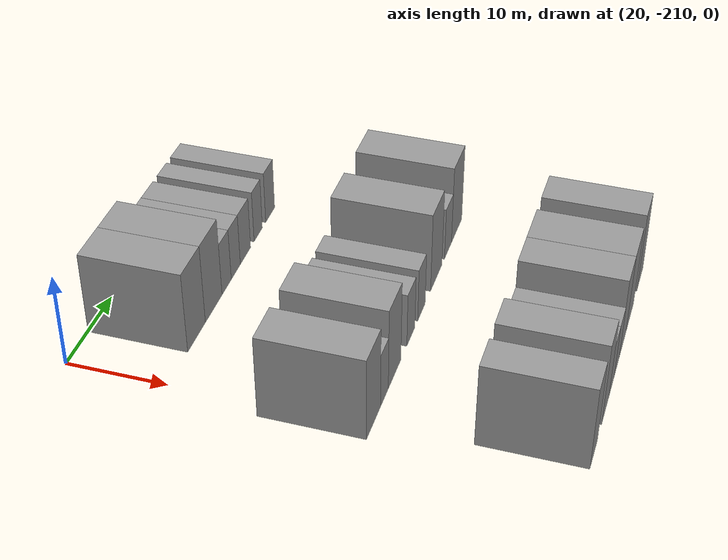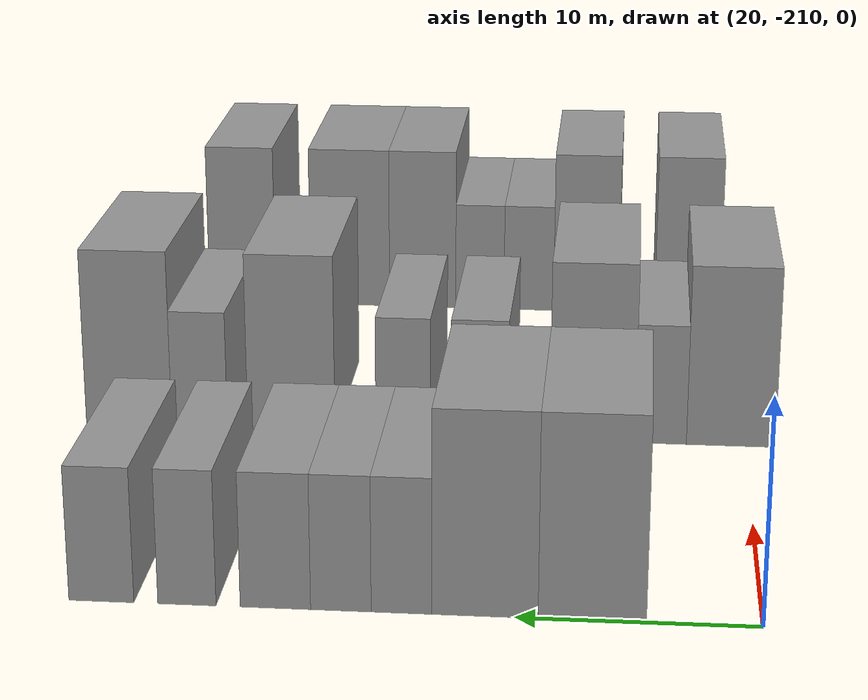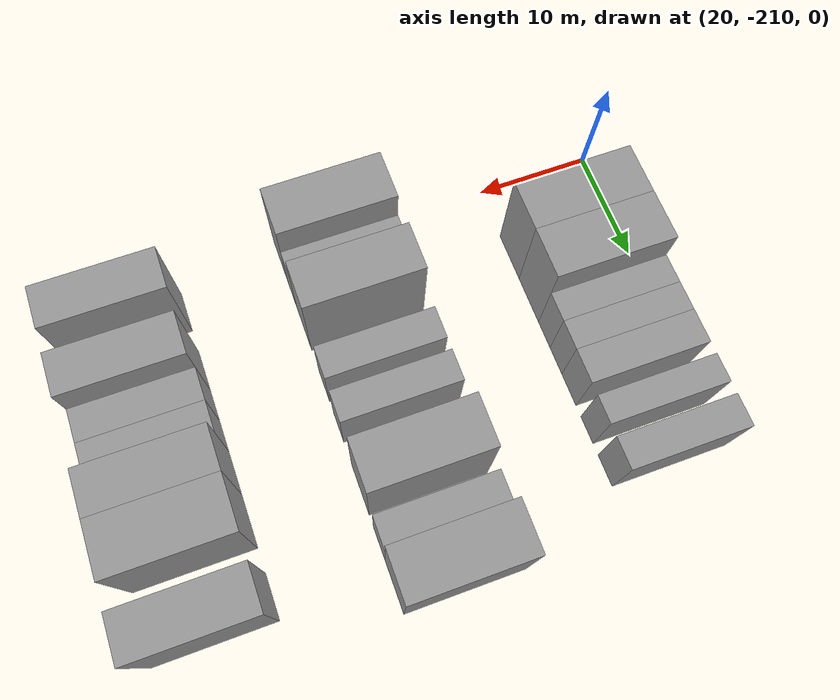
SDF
<sdf version="1.6">
 <world name="default">
  <model name="building_8">
   <static>1</static>
   <pose>25.0000 -203.1391 0 0.000000 0.000000 0.000000</pose>
   <link name="link">
    <pose>0 0 4.50 0 0 0</pose>
    <collision name="collision"><geometry><box><size>10.0000 4.3790 9.0000</size></box></geometry></collision>
    <visual name="visual">
     <cast_shadows>0</cast_shadows>
     <geometry><box><size>10.0000 4.3790 9.0000</size></box></geometry>
     <material>
      <script>
       <uri>model://grey_wall/materials/scripts</uri>
       <uri>model://grey_wall/materials/textures</uri>
       <name>vrc/grey_wall</name>
      </script>
     </material>
    </visual>
   </link>
  </model>
  <model name="building_9">
   <static>1</static>
   <pose>25.0000 -198.7892 0 0.000000 0.000000 0.000000</pose>
   <link name="link">
    <pose>0 0 4.50 0 0 0</pose>
    <collision name="collision"><geometry><box><size>10.0000 4.3207 9.0000</size></box></geometry></collision>
    <visual name="visual">
     <cast_shadows>0</cast_shadows>
     <geometry><box><size>10.0000 4.3207 9.0000</size></box></geometry>
     <material>
      <script>
       <uri>model://grey_wall/materials/scripts</uri>
       <uri>model://grey_wall/materials/textures</uri>
       <name>vrc/grey_wall</name>
      </script>
     </material>
    </visual>
   </link>
  </model>
  <model name="building_10">
   <static>1</static>
   <pose>25.0000 -195.3868 0 0.000000 0.000000 0.000000</pose>
   <link name="link">
    <pose>0 0 3.00 0 0 0</pose>
    <collision name="collision"><geometry><box><size>10.0000 2.4841 6.0000</size></box></geometry></collision>
    <visual name="visual">
     <cast_shadows>0</cast_shadows>
     <geometry><box><size>10.0000 2.4841 6.0000</size></box></geometry>
     <material>
      <script>
       <uri>model://grey_wall/materials/scripts</uri>
       <uri>model://grey_wall/materials/textures</uri>
       <name>vrc/grey_wall</name>
      </script>
     </material>
    </visual>
   </link>
  </model>
  <model name="building_11">
   <static>1</static>
   <pose>25.0000 -192.8999 0 0.000000 0.000000 0.000000</pose>
   <link name="link">
    <pose>0 0 3.00 0 0 0</pose>
    <collision name="collision"><geometry><box><size>10.0000 2.4897 6.0000</size></box></geometry></collision>
    <visual name="visual">
     <cast_shadows>0</cast_shadows>
     <geometry><box><size>10.0000 2.4897 6.0000</size></box></geometry>
     <material>
      <script>
       <uri>model://grey_wall/materials/scripts</uri>
       <uri>model://grey_wall/materials/textures</uri>
       <name>vrc/grey_wall</name>
      </script>
     </material>
    </visual>
   </link>
  </model>
  <model name="building_12">
   <static>1</static>
   <pose>25.0000 -190.2014 0 0.000000 0.000000 0.000000</pose>
   <link name="link">
    <pose>0 0 3.00 0 0 0</pose>
    <collision name="collision"><geometry><box><size>10.0000 2.9074 6.0000</size></box></geometry></collision>
    <visual name="visual">
     <cast_shadows>0</cast_shadows>
     <geometry><box><size>10.0000 2.9074 6.0000</size></box></geometry>
     <material>
      <script>
       <uri>model://grey_wall/materials/scripts</uri>
       <uri>model://grey_wall/materials/textures</uri>
       <name>vrc/grey_wall</name>
      </script>
     </material>
    </visual>
   </link>
  </model>
  <model name="building_13">
   <static>1</static>
   <pose>25.0000 -186.5393 0 0.000000 0.000000 0.000000</pose>
   <link name="link">
    <pose>0 0 3.00 0 0 0</pose>
    <collision name="collision"><geometry><box><size>10.0000 2.4167 6.0000</size></box></geometry></collision>
    <visual name="visual">
     <cast_shadows>0</cast_shadows>
     <geometry><box><size>10.0000 2.4167 6.0000</size></box></geometry>
     <material>
      <script>
       <uri>model://grey_wall/materials/scripts</uri>
       <uri>model://grey_wall/materials/textures</uri>
       <name>vrc/grey_wall</name>
      </script>
     </material>
    </visual>
   </link>
  </model>
  <model name="building_14">
   <static>1</static>
   <pose>25.0000 -182.9748 0 0.000000 0.000000 0.000000</pose>
   <link name="link">
    <pose>0 0 3.00 0 0 0</pose>
    <collision name="collision"><geometry><box><size>10.0000 2.7123 6.0000</size></box></geometry></collision>
    <visual name="visual">
     <cast_shadows>0</cast_shadows>
     <geometry><box><size>10.0000 2.7123 6.0000</size></box></geometry>
     <material>
      <script>
       <uri>model://grey_wall/materials/scripts</uri>
       <uri>model://grey_wall/materials/textures</uri>
       <name>vrc/grey_wall</name>
      </script>
     </material>
    </visual>
   </link>
  </model>
  <model name="building_124">
   <static>1</static>
   <pose>44.0000 -209.3266 0 0.000000 0.000000 0.000000</pose>
   <link name="link">
    <pose>0 0 4.50 0 0 0</pose>
    <collision name="collision"><geometry><box><size>10.0000 4.2366 9.0000</size></box></geometry></collision>
    <visual name="visual">
     <cast_shadows>0</cast_shadows>
     <geometry><box><size>10.0000 4.2366 9.0000</size></box></geometry>
     <material>
      <script>
       <uri>model://grey_wall/materials/scripts</uri>
       <uri>model://grey_wall/materials/textures</uri>
       <name>vrc/grey_wall</name>
      </script>
     </material>
    </visual>
   </link>
  </model>
  <model name="building_125">
   <static>1</static>
   <pose>44.0000 -205.9829 0 0.000000 0.000000 0.000000</pose>
   <link name="link">
    <pose>0 0 3.00 0 0 0</pose>
    <collision name="collision"><geometry><box><size>10.0000 2.4507 6.0000</size></box></geometry></collision>
    <visual name="visual">
     <cast_shadows>0</cast_shadows>
     <geometry><box><size>10.0000 2.4507 6.0000</size></box></geometry>
     <material>
      <script>
       <uri>model://grey_wall/materials/scripts</uri>
       <uri>model://grey_wall/materials/textures</uri>
       <name>vrc/grey_wall</name>
      </script>
     </material>
    </visual>
   </link>
  </model>
  <model name="building_126">
   <static>1</static>
   <pose>44.0000 -202.7078 0 0.000000 0.000000 0.000000</pose>
   <link name="link">
    <pose>0 0 4.50 0 0 0</pose>
    <collision name="collision"><geometry><box><size>10.0000 4.0996 9.0000</size></box></geometry></collision>
    <visual name="visual">
     <cast_shadows>0</cast_shadows>
     <geometry><box><size>10.0000 4.0996 9.0000</size></box></geometry>
     <material>
      <script>
       <uri>model://grey_wall/materials/scripts</uri>
       <uri>model://grey_wall/materials/textures</uri>
       <name>vrc/grey_wall</name>
      </script>
     </material>
    </visual>
   </link>
  </model>
  <model name="building_127">
   <static>1</static>
   <pose>44.0000 -197.2748 0 0.000000 0.000000 0.000000</pose>
   <link name="link">
    <pose>0 0 3.00 0 0 0</pose>
    <collision name="collision"><geometry><box><size>10.0000 2.7664 6.0000</size></box></geometry></collision>
    <visual name="visual">
     <cast_shadows>0</cast_shadows>
     <geometry><box><size>10.0000 2.7664 6.0000</size></box></geometry>
     <material>
      <script>
       <uri>model://grey_wall/materials/scripts</uri>
       <uri>model://grey_wall/materials/textures</uri>
       <name>vrc/grey_wall</name>
      </script>
     </material>
    </visual>
   </link>
  </model>
  <model name="building_128">
   <static>1</static>
   <pose>44.0000 -193.5607 0 0.000000 0.000000 0.000000</pose>
   <link name="link">
    <pose>0 0 3.00 0 0 0</pose>
    <collision name="collision"><geometry><box><size>10.0000 2.6619 6.0000</size></box></geometry></collision>
    <visual name="visual">
     <cast_shadows>0</cast_shadows>
     <geometry><box><size>10.0000 2.6619 6.0000</size></box></geometry>
     <material>
      <script>
       <uri>model://grey_wall/materials/scripts</uri>
       <uri>model://grey_wall/materials/textures</uri>
       <name>vrc/grey_wall</name>
      </script>
     </material>
    </visual>
   </link>
  </model>
  <model name="building_129">
   <static>1</static>
   <pose>44.0000 -188.0911 0 0.000000 0.000000 0.000000</pose>
   <link name="link">
    <pose>0 0 4.50 0 0 0</pose>
    <collision name="collision"><geometry><box><size>10.0000 4.2774 9.0000</size></box></geometry></collision>
    <visual name="visual">
     <cast_shadows>0</cast_shadows>
     <geometry><box><size>10.0000 4.2774 9.0000</size></box></geometry>
     <material>
      <script>
       <uri>model://grey_wall/materials/scripts</uri>
       <uri>model://grey_wall/materials/textures</uri>
       <name>vrc/grey_wall</name>
      </script>
     </material>
    </visual>
   </link>
  </model>
  <model name="building_130">
   <static>1</static>
   <pose>44.0000 -183.5772 0 0.000000 0.000000 0.000000</pose>
   <link name="link">
    <pose>0 0 3.00 0 0 0</pose>
    <collision name="collision"><geometry><box><size>10.0000 2.7503 6.0000</size></box></geometry></collision>
    <visual name="visual">
     <cast_shadows>0</cast_shadows>
     <geometry><box><size>10.0000 2.7503 6.0000</size></box></geometry>
     <material>
      <script>
       <uri>model://grey_wall/materials/scripts</uri>
       <uri>model://grey_wall/materials/textures</uri>
       <name>vrc/grey_wall</name>
      </script>
     </material>
    </visual>
   </link>
  </model>
  <model name="building_131">
   <static>1</static>
   <pose>44.0000 -180.0854 0 0.000000 0.000000 0.000000</pose>
   <link name="link">
    <pose>0 0 4.50 0 0 0</pose>
    <collision name="collision"><geometry><box><size>10.0000 4.2333 9.0000</size></box></geometry></collision>
    <visual name="visual">
     <cast_shadows>0</cast_shadows>
     <geometry><box><size>10.0000 4.2333 9.0000</size></box></geometry>
     <material>
      <script>
       <uri>model://grey_wall/materials/scripts</uri>
       <uri>model://grey_wall/materials/textures</uri>
       <name>vrc/grey_wall</name>
      </script>
     </material>
    </visual>
   </link>
  </model>
  <model name="building_244">
   <static>1</static>
   <pose>63.0000 -207.5299 0 0.000000 0.000000 0.000000</pose>
   <link name="link">
    <pose>0 0 4.50 0 0 0</pose>
    <collision name="collision"><geometry><box><size>10.0000 3.6032 9.0000</size></box></geometry></collision>
    <visual name="visual">
     <cast_shadows>0</cast_shadows>
     <geometry><box><size>10.0000 3.6032 9.0000</size></box></geometry>
     <material>
      <script>
       <uri>model://grey_wall/materials/scripts</uri>
       <uri>model://grey_wall/materials/textures</uri>
       <name>vrc/grey_wall</name>
      </script>
     </material>
    </visual>
   </link>
  </model>
  <model name="building_245">
   <static>1</static>
   <pose>63.0000 -201.9172 0 0.000000 0.000000 0.000000</pose>
   <link name="link">
    <pose>0 0 4.50 0 0 0</pose>
    <collision name="collision"><geometry><box><size>10.0000 3.6222 9.0000</size></box></geometry></collision>
    <visual name="visual">
     <cast_shadows>0</cast_shadows>
     <geometry><box><size>10.0000 3.6222 9.0000</size></box></geometry>
     <material>
      <script>
       <uri>model://grey_wall/materials/scripts</uri>
       <uri>model://grey_wall/materials/textures</uri>
       <name>vrc/grey_wall</name>
      </script>
     </material>
    </visual>
   </link>
  </model>
  <model name="building_246">
   <static>1</static>
   <pose>63.0000 -198.7202 0 0.000000 0.000000 0.000000</pose>
   <link name="link">
    <pose>0 0 3.00 0 0 0</pose>
    <collision name="collision"><geometry><box><size>10.0000 2.7716 6.0000</size></box></geometry></collision>
    <visual name="visual">
     <cast_shadows>0</cast_shadows>
     <geometry><box><size>10.0000 2.7716 6.0000</size></box></geometry>
     <material>
      <script>
       <uri>model://grey_wall/materials/scripts</uri>
       <uri>model://grey_wall/materials/textures</uri>
       <name>vrc/grey_wall</name>
      </script>
     </material>
    </visual>
   </link>
  </model>
  <model name="building_247">
   <static>1</static>
   <pose>63.0000 -195.9802 0 0.000000 0.000000 0.000000</pose>
   <link name="link">
    <pose>0 0 3.00 0 0 0</pose>
    <collision name="collision"><geometry><box><size>10.0000 2.7084 6.0000</size></box></geometry></collision>
    <visual name="visual">
     <cast_shadows>0</cast_shadows>
     <geometry><box><size>10.0000 2.7084 6.0000</size></box></geometry>
     <material>
      <script>
       <uri>model://grey_wall/materials/scripts</uri>
       <uri>model://grey_wall/materials/textures</uri>
       <name>vrc/grey_wall</name>
      </script>
     </material>
    </visual>
   </link>
  </model>
  <model name="building_248">
   <static>1</static>
   <pose>63.0000 -192.7599 0 0.000000 0.000000 0.000000</pose>
   <link name="link">
    <pose>0 0 4.50 0 0 0</pose>
    <collision name="collision"><geometry><box><size>10.0000 3.7323 9.0000</size></box></geometry></collision>
    <visual name="visual">
     <cast_shadows>0</cast_shadows>
     <geometry><box><size>10.0000 3.7323 9.0000</size></box></geometry>
     <material>
      <script>
       <uri>model://grey_wall/materials/scripts</uri>
       <uri>model://grey_wall/materials/textures</uri>
       <name>vrc/grey_wall</name>
      </script>
     </material>
    </visual>
   </link>
  </model>
  <model name="building_249">
   <static>1</static>
   <pose>63.0000 -188.6616 0 0.000000 0.000000 0.000000</pose>
   <link name="link">
    <pose>0 0 4.50 0 0 0</pose>
    <collision name="collision"><geometry><box><size>10.0000 4.4644 9.0000</size></box></geometry></collision>
    <visual name="visual">
     <cast_shadows>0</cast_shadows>
     <geometry><box><size>10.0000 4.4644 9.0000</size></box></geometry>
     <material>
      <script>
       <uri>model://grey_wall/materials/scripts</uri>
       <uri>model://grey_wall/materials/textures</uri>
       <name>vrc/grey_wall</name>
      </script>
     </material>
    </visual>
   </link>
  </model>
  <model name="building_250">
   <static>1</static>
   <pose>63.0000 -182.5528 0 0.000000 0.000000 0.000000</pose>
   <link name="link">
    <pose>0 0 4.50 0 0 0</pose>
    <collision name="collision"><geometry><box><size>10.0000 3.7532 9.0000</size></box></geometry></collision>
    <visual name="visual">
     <cast_shadows>0</cast_shadows>
     <geometry><box><size>10.0000 3.7532 9.0000</size></box></geometry>
     <material>
      <script>
       <uri>model://grey_wall/materials/scripts</uri>
       <uri>model://grey_wall/materials/textures</uri>
       <name>vrc/grey_wall</name>
      </script>
     </material>
    </visual>
   </link>
  </model>
 </world>
</sdf>
